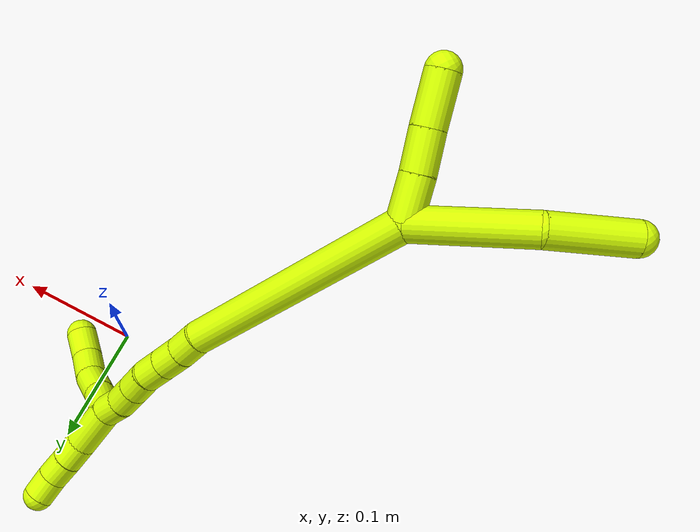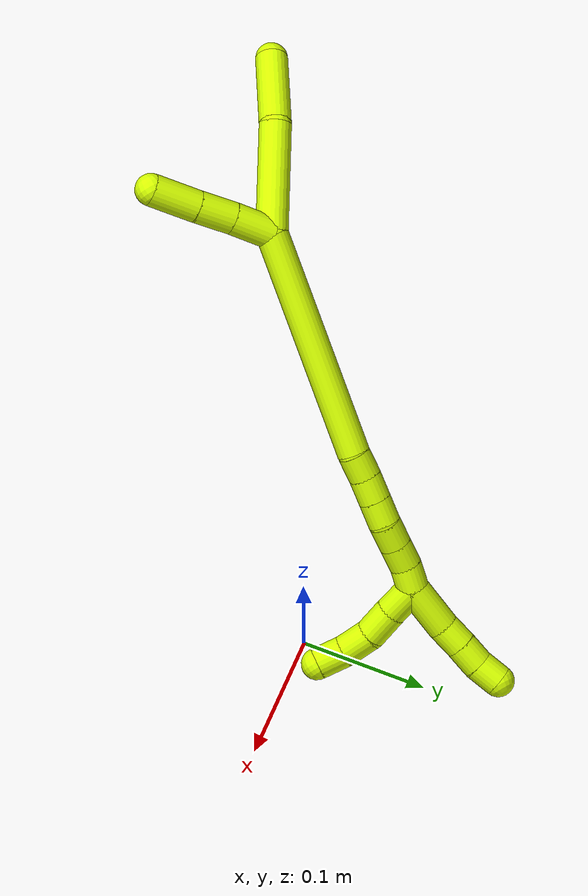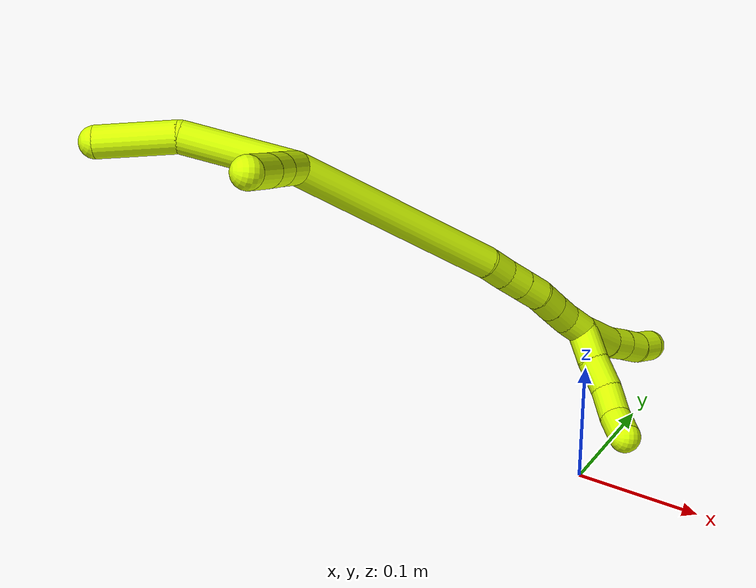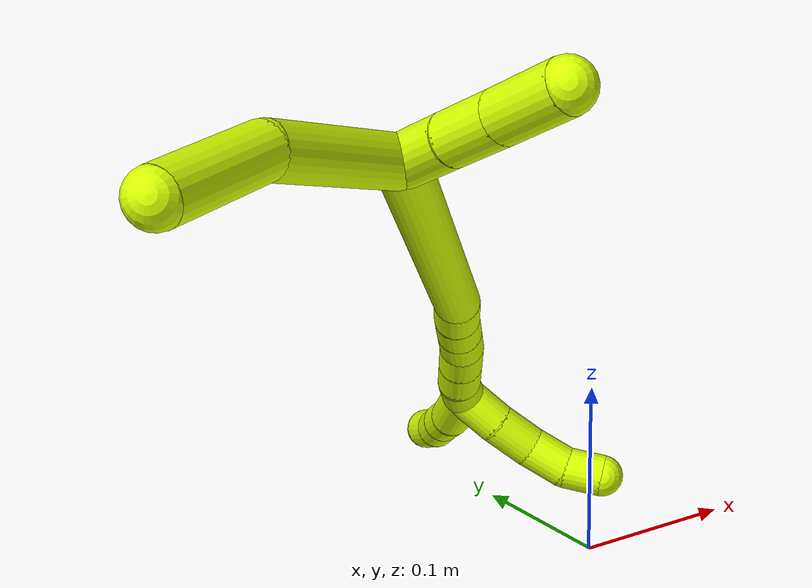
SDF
<sdf version="1.7">
 <world name="default">
  <model name="15">
   <static>0</static>
   <link name="15">
    <collision name="collision-cylinder-e_1_2_8">
     <pose>-0.007145 0.021741 0.036948 -0.531857 -0.165144 0.045077</pose>
     <geometry><cylinder><radius>0.0125</radius><length>0.086923</length></cylinder></geometry>
     <surface>
      <friction><ode><mu>1.16</mu><mu2>1.16</mu2><slip1>0</slip1><slip2>0</slip2></ode></friction>
      <contact><ode><kp>1e+06</kp><kd>1</kd><max_vel>0</max_vel><min_depth>0.001</min_depth></ode></contact>
     </surface>
    </collision>
    <visual name="visual-cylinder-e_1_2_8">
     <pose>-0.007145 0.021741 0.036948 -0.531857 -0.165144 0.045077</pose>
     <geometry><cylinder><radius>0.0125</radius><length>0.086923</length></cylinder></geometry>
     <material><ambient>0.835294 1 0 1</ambient></material>
    </visual>
    <collision name="collision-cylinder-e_2_8_6">
     <pose>-0.028822 0.055136 0.099346 -0.429427 -0.478879 0.106374</pose>
     <geometry><cylinder><radius>0.0125</radius><length>0.063077</length></cylinder></geometry>
     <surface>
      <friction><ode><mu>1.16</mu><mu2>1.16</mu2><slip1>0</slip1><slip2>0</slip2></ode></friction>
      <contact><ode><kp>1e+06</kp><kd>1</kd><max_vel>0</max_vel><min_depth>0.001</min_depth></ode></contact>
     </surface>
    </collision>
    <visual name="visual-cylinder-e_2_8_6">
     <pose>-0.028822 0.055136 0.099346 -0.429427 -0.478879 0.106374</pose>
     <geometry><cylinder><radius>0.0125</radius><length>0.063077</length></cylinder></geometry>
     <material><ambient>0.835294 1 0 1</ambient></material>
    </visual>
    <collision name="collision-cylinder-e_1_2_9">
     <pose>0.005916 -0.010135 0.01144 0.724992 0.369324 0.141446</pose>
     <geometry><cylinder><radius>0.0125</radius><length>0.032777</length></cylinder></geometry>
     <surface>
      <friction><ode><mu>1.16</mu><mu2>1.16</mu2><slip1>0</slip1><slip2>0</slip2></ode></friction>
      <contact><ode><kp>1e+06</kp><kd>1</kd><max_vel>0</max_vel><min_depth>0.001</min_depth></ode></contact>
     </surface>
    </collision>
    <visual name="visual-cylinder-e_1_2_9">
     <pose>0.005916 -0.010135 0.01144 0.724992 0.369324 0.141446</pose>
     <geometry><cylinder><radius>0.0125</radius><length>0.032777</length></cylinder></geometry>
     <material><ambient>0.835294 1 0 1</ambient></material>
    </visual>
    <collision name="collision-cylinder-e_2_9_10">
     <pose>0.01753 -0.029876 0.032553 0.781904 0.395884 0.164961</pose>
     <geometry><cylinder><radius>0.0125</radius><length>0.029551</length></cylinder></geometry>
     <surface>
      <friction><ode><mu>1.16</mu><mu2>1.16</mu2><slip1>0</slip1><slip2>0</slip2></ode></friction>
      <contact><ode><kp>1e+06</kp><kd>1</kd><max_vel>0</max_vel><min_depth>0.001</min_depth></ode></contact>
     </surface>
    </collision>
    <visual name="visual-cylinder-e_2_9_10">
     <pose>0.01753 -0.029876 0.032553 0.781904 0.395884 0.164961</pose>
     <geometry><cylinder><radius>0.0125</radius><length>0.029551</length></cylinder></geometry>
     <material><ambient>0.835294 1 0 1</ambient></material>
    </visual>
    <collision name="collision-cylinder-e_3_10_5">
     <pose>0.030349 -0.051303 0.055046 0.744927 0.387733 0.153114</pose>
     <geometry><cylinder><radius>0.0125</radius><length>0.037672</length></cylinder></geometry>
     <surface>
      <friction><ode><mu>1.16</mu><mu2>1.16</mu2><slip1>0</slip1><slip2>0</slip2></ode></friction>
      <contact><ode><kp>1e+06</kp><kd>1</kd><max_vel>0</max_vel><min_depth>0.001</min_depth></ode></contact>
     </surface>
    </collision>
    <visual name="visual-cylinder-e_3_10_5">
     <pose>0.030349 -0.051303 0.055046 0.744927 0.387733 0.153114</pose>
     <geometry><cylinder><radius>0.0125</radius><length>0.037672</length></cylinder></geometry>
     <material><ambient>0.835294 1 0 1</ambient></material>
    </visual>
    <collision name="collision-cylinder-e_1_2_11">
     <pose>-0.02524 -0.013878 -0.085036 2.97982 -0.284971 -2.11292</pose>
     <geometry><cylinder><radius>0.0125</radius><length>0.179565</length></cylinder></geometry>
     <surface>
      <friction><ode><mu>1.16</mu><mu2>1.16</mu2><slip1>0</slip1><slip2>0</slip2></ode></friction>
      <contact><ode><kp>1e+06</kp><kd>1</kd><max_vel>0</max_vel><min_depth>0.001</min_depth></ode></contact>
     </surface>
    </collision>
    <visual name="visual-cylinder-e_1_2_11">
     <pose>-0.02524 -0.013878 -0.085036 2.97982 -0.284971 -2.11292</pose>
     <geometry><cylinder><radius>0.0125</radius><length>0.179565</length></cylinder></geometry>
     <material><ambient>0.835294 1 0 1</ambient></material>
    </visual>
    <collision name="collision-cylinder-e_2_11_12">
     <pose>-0.05482 -0.02833 -0.179304 3.07951 -0.438678 -2.86479</pose>
     <geometry><cylinder><radius>0.0125</radius><length>0.020433</length></cylinder></geometry>
     <surface>
      <friction><ode><mu>1.16</mu><mu2>1.16</mu2><slip1>0</slip1><slip2>0</slip2></ode></friction>
      <contact><ode><kp>1e+06</kp><kd>1</kd><max_vel>0</max_vel><min_depth>0.001</min_depth></ode></contact>
     </surface>
    </collision>
    <visual name="visual-cylinder-e_2_11_12">
     <pose>-0.05482 -0.02833 -0.179304 3.07951 -0.438678 -2.86479</pose>
     <geometry><cylinder><radius>0.0125</radius><length>0.020433</length></cylinder></geometry>
     <material><ambient>0.835294 1 0 1</ambient></material>
    </visual>
    <collision name="collision-cylinder-e_3_12_13">
     <pose>-0.062885 -0.029997 -0.197752 3.02347 -0.381711 -2.54759</pose>
     <geometry><cylinder><radius>0.0125</radius><length>0.020001</length></cylinder></geometry>
     <surface>
      <friction><ode><mu>1.16</mu><mu2>1.16</mu2><slip1>0</slip1><slip2>0</slip2></ode></friction>
      <contact><ode><kp>1e+06</kp><kd>1</kd><max_vel>0</max_vel><min_depth>0.001</min_depth></ode></contact>
     </surface>
    </collision>
    <visual name="visual-cylinder-e_3_12_13">
     <pose>-0.062885 -0.029997 -0.197752 3.02347 -0.381711 -2.54759</pose>
     <geometry><cylinder><radius>0.0125</radius><length>0.020001</length></cylinder></geometry>
     <material><ambient>0.835294 1 0 1</ambient></material>
    </visual>
    <collision name="collision-cylinder-e_4_13_14">
     <pose>-0.070331 -0.032197 -0.216184 3.02219 -0.381266 -2.54087</pose>
     <geometry><cylinder><radius>0.0125</radius><length>0.02</length></cylinder></geometry>
     <surface>
      <friction><ode><mu>1.16</mu><mu2>1.16</mu2><slip1>0</slip1><slip2>0</slip2></ode></friction>
      <contact><ode><kp>1e+06</kp><kd>1</kd><max_vel>0</max_vel><min_depth>0.001</min_depth></ode></contact>
     </surface>
    </collision>
    <visual name="visual-cylinder-e_4_13_14">
     <pose>-0.070331 -0.032197 -0.216184 3.02219 -0.381266 -2.54087</pose>
     <geometry><cylinder><radius>0.0125</radius><length>0.02</length></cylinder></geometry>
     <material><ambient>0.835294 1 0 1</ambient></material>
    </visual>
    <collision name="collision-cylinder-e_5_14_15">
     <pose>-0.079338 -0.033756 -0.233876 3.08806 -0.556943 -2.95487</pose>
     <geometry><cylinder><radius>0.0125</radius><length>0.02</length></cylinder></geometry>
     <surface>
      <friction><ode><mu>1.16</mu><mu2>1.16</mu2><slip1>0</slip1><slip2>0</slip2></ode></friction>
      <contact><ode><kp>1e+06</kp><kd>1</kd><max_vel>0</max_vel><min_depth>0.001</min_depth></ode></contact>
     </surface>
    </collision>
    <visual name="visual-cylinder-e_5_14_15">
     <pose>-0.079338 -0.033756 -0.233876 3.08806 -0.556943 -2.95487</pose>
     <geometry><cylinder><radius>0.0125</radius><length>0.02</length></cylinder></geometry>
     <material><ambient>0.835294 1 0 1</ambient></material>
    </visual>
    <collision name="collision-cylinder-e_6_15_16">
     <pose>-0.089812 -0.034627 -0.250893 3.09284 -0.545402 -2.96767</pose>
     <geometry><cylinder><radius>0.0125</radius><length>0.02</length></cylinder></geometry>
     <surface>
      <friction><ode><mu>1.16</mu><mu2>1.16</mu2><slip1>0</slip1><slip2>0</slip2></ode></friction>
      <contact><ode><kp>1e+06</kp><kd>1</kd><max_vel>0</max_vel><min_depth>0.001</min_depth></ode></contact>
     </surface>
    </collision>
    <visual name="visual-cylinder-e_6_15_16">
     <pose>-0.089812 -0.034627 -0.250893 3.09284 -0.545402 -2.96767</pose>
     <geometry><cylinder><radius>0.0125</radius><length>0.02</length></cylinder></geometry>
     <material><ambient>0.835294 1 0 1</ambient></material>
    </visual>
    <collision name="collision-cylinder-e_7_16_1">
     <pose>-0.098957 -0.036911 -0.268424 2.9369 -0.406838 -2.21764</pose>
     <geometry><cylinder><radius>0.0125</radius><length>0.02</length></cylinder></geometry>
     <surface>
      <friction><ode><mu>1.16</mu><mu2>1.16</mu2><slip1>0</slip1><slip2>0</slip2></ode></friction>
      <contact><ode><kp>1e+06</kp><kd>1</kd><max_vel>0</max_vel><min_depth>0.001</min_depth></ode></contact>
     </surface>
    </collision>
    <visual name="visual-cylinder-e_7_16_1">
     <pose>-0.098957 -0.036911 -0.268424 2.9369 -0.406838 -2.21764</pose>
     <geometry><cylinder><radius>0.0125</radius><length>0.02</length></cylinder></geometry>
     <material><ambient>0.835294 1 0 1</ambient></material>
    </visual>
    <collision name="collision-cylinder-e_1_1_17">
     <pose>-0.108661 -0.050234 -0.280165 1.80631 -0.453833 -0.569779</pose>
     <geometry><cylinder><radius>0.0125</radius><length>0.026218</length></cylinder></geometry>
     <surface>
      <friction><ode><mu>1.16</mu><mu2>1.16</mu2><slip1>0</slip1><slip2>0</slip2></ode></friction>
      <contact><ode><kp>1e+06</kp><kd>1</kd><max_vel>0</max_vel><min_depth>0.001</min_depth></ode></contact>
     </surface>
    </collision>
    <visual name="visual-cylinder-e_1_1_17">
     <pose>-0.108661 -0.050234 -0.280165 1.80631 -0.453833 -0.569779</pose>
     <geometry><cylinder><radius>0.0125</radius><length>0.026218</length></cylinder></geometry>
     <material><ambient>0.835294 1 0 1</ambient></material>
    </visual>
    <collision name="collision-cylinder-e_2_17_18">
     <pose>-0.11914 -0.073223 -0.286319 1.85788 -0.374905 -0.497054</pose>
     <geometry><cylinder><radius>0.0125</radius><length>0.025842</length></cylinder></geometry>
     <surface>
      <friction><ode><mu>1.16</mu><mu2>1.16</mu2><slip1>0</slip1><slip2>0</slip2></ode></friction>
      <contact><ode><kp>1e+06</kp><kd>1</kd><max_vel>0</max_vel><min_depth>0.001</min_depth></ode></contact>
     </surface>
    </collision>
    <visual name="visual-cylinder-e_2_17_18">
     <pose>-0.11914 -0.073223 -0.286319 1.85788 -0.374905 -0.497054</pose>
     <geometry><cylinder><radius>0.0125</radius><length>0.025842</length></cylinder></geometry>
     <material><ambient>0.835294 1 0 1</ambient></material>
    </visual>
    <collision name="collision-cylinder-e_3_18_19">
     <pose>-0.127525 -0.096708 -0.29019 1.60985 -0.296395 -0.308019</pose>
     <geometry><cylinder><radius>0.0125</radius><length>0.025018</length></cylinder></geometry>
     <surface>
      <friction><ode><mu>1.16</mu><mu2>1.16</mu2><slip1>0</slip1><slip2>0</slip2></ode></friction>
      <contact><ode><kp>1e+06</kp><kd>1</kd><max_vel>0</max_vel><min_depth>0.001</min_depth></ode></contact>
     </surface>
    </collision>
    <visual name="visual-cylinder-e_3_18_19">
     <pose>-0.127525 -0.096708 -0.29019 1.60985 -0.296395 -0.308019</pose>
     <geometry><cylinder><radius>0.0125</radius><length>0.025018</length></cylinder></geometry>
     <material><ambient>0.835294 1 0 1</ambient></material>
    </visual>
    <collision name="collision-cylinder-e_4_19_4">
     <pose>-0.130881 -0.120084 -0.28975 1.49151 0.025968 0.023987</pose>
     <geometry><cylinder><radius>0.0125</radius><length>0.022922</length></cylinder></geometry>
     <surface>
      <friction><ode><mu>1.16</mu><mu2>1.16</mu2><slip1>0</slip1><slip2>0</slip2></ode></friction>
      <contact><ode><kp>1e+06</kp><kd>1</kd><max_vel>0</max_vel><min_depth>0.001</min_depth></ode></contact>
     </surface>
    </collision>
    <visual name="visual-cylinder-e_4_19_4">
     <pose>-0.130881 -0.120084 -0.28975 1.49151 0.025968 0.023987</pose>
     <geometry><cylinder><radius>0.0125</radius><length>0.022922</length></cylinder></geometry>
     <material><ambient>0.835294 1 0 1</ambient></material>
    </visual>
    <collision name="collision-cylinder-e_1_1_20">
     <pose>-0.110861 -0.035869 -0.294921 -2.97696 -0.421058 2.40468</pose>
     <geometry><cylinder><radius>0.0125</radius><length>0.038886</length></cylinder></geometry>
     <surface>
      <friction><ode><mu>1.16</mu><mu2>1.16</mu2><slip1>0</slip1><slip2>0</slip2></ode></friction>
      <contact><ode><kp>1e+06</kp><kd>1</kd><max_vel>0</max_vel><min_depth>0.001</min_depth></ode></contact>
     </surface>
    </collision>
    <visual name="visual-cylinder-e_1_1_20">
     <pose>-0.110861 -0.035869 -0.294921 -2.97696 -0.421058 2.40468</pose>
     <geometry><cylinder><radius>0.0125</radius><length>0.038886</length></cylinder></geometry>
     <material><ambient>0.835294 1 0 1</ambient></material>
    </visual>
    <collision name="collision-cylinder-e_2_20_21">
     <pose>-0.121654 -0.030498 -0.321893 -2.88707 -0.283149 1.67847</pose>
     <geometry><cylinder><radius>0.0125</radius><length>0.020376</length></cylinder></geometry>
     <surface>
      <friction><ode><mu>1.16</mu><mu2>1.16</mu2><slip1>0</slip1><slip2>0</slip2></ode></friction>
      <contact><ode><kp>1e+06</kp><kd>1</kd><max_vel>0</max_vel><min_depth>0.001</min_depth></ode></contact>
     </surface>
    </collision>
    <visual name="visual-cylinder-e_2_20_21">
     <pose>-0.121654 -0.030498 -0.321893 -2.88707 -0.283149 1.67847</pose>
     <geometry><cylinder><radius>0.0125</radius><length>0.020376</length></cylinder></geometry>
     <material><ambient>0.835294 1 0 1</ambient></material>
    </visual>
    <collision name="collision-cylinder-e_3_21_22">
     <pose>-0.127475 -0.025981 -0.341006 -2.93176 -0.292916 1.90166</pose>
     <geometry><cylinder><radius>0.0125</radius><length>0.020601</length></cylinder></geometry>
     <surface>
      <friction><ode><mu>1.16</mu><mu2>1.16</mu2><slip1>0</slip1><slip2>0</slip2></ode></friction>
      <contact><ode><kp>1e+06</kp><kd>1</kd><max_vel>0</max_vel><min_depth>0.001</min_depth></ode></contact>
     </surface>
    </collision>
    <visual name="visual-cylinder-e_3_21_22">
     <pose>-0.127475 -0.025981 -0.341006 -2.93176 -0.292916 1.90166</pose>
     <geometry><cylinder><radius>0.0125</radius><length>0.020601</length></cylinder></geometry>
     <material><ambient>0.835294 1 0 1</ambient></material>
    </visual>
    <collision name="collision-cylinder-e_4_22_3">
     <pose>-0.132133 -0.020174 -0.359841 -2.75394 -0.168037 0.810571</pose>
     <geometry><cylinder><radius>0.0125</radius><length>0.020136</length></cylinder></geometry>
     <surface>
      <friction><ode><mu>1.16</mu><mu2>1.16</mu2><slip1>0</slip1><slip2>0</slip2></ode></friction>
      <contact><ode><kp>1e+06</kp><kd>1</kd><max_vel>0</max_vel><min_depth>0.001</min_depth></ode></contact>
     </surface>
    </collision>
    <visual name="visual-cylinder-e_4_22_3">
     <pose>-0.132133 -0.020174 -0.359841 -2.75394 -0.168037 0.810571</pose>
     <geometry><cylinder><radius>0.0125</radius><length>0.020136</length></cylinder></geometry>
     <material><ambient>0.835294 1 0 1</ambient></material>
    </visual>
    <collision name="collision-sphere-3">
     <pose>-0.133817 -0.016422 -0.369031 0 -0 0</pose>
     <geometry><sphere><radius>0.0125</radius></sphere></geometry>
     <surface>
      <friction><ode><mu>1.16</mu><mu2>1.16</mu2><slip1>0</slip1><slip2>0</slip2></ode></friction>
      <contact><ode><kp>1e+06</kp><kd>1</kd><max_vel>0</max_vel><min_depth>0.001</min_depth></ode></contact>
     </surface>
    </collision>
    <visual name="visual-sphere-3">
     <pose>-0.133817 -0.016422 -0.369031 0 -0 0</pose>
     <geometry><sphere><radius>0.0125</radius></sphere></geometry>
     <material><ambient>0.835294 1 0 1</ambient></material>
    </visual>
    <collision name="collision-sphere-22">
     <pose>-0.130449 -0.023926 -0.350652 0 -0 0</pose>
     <geometry><sphere><radius>0.0125</radius></sphere></geometry>
     <surface>
      <friction><ode><mu>1.16</mu><mu2>1.16</mu2><slip1>0</slip1><slip2>0</slip2></ode></friction>
      <contact><ode><kp>1e+06</kp><kd>1</kd><max_vel>0</max_vel><min_depth>0.001</min_depth></ode></contact>
     </surface>
    </collision>
    <visual name="visual-sphere-22">
     <pose>-0.130449 -0.023926 -0.350652 0 -0 0</pose>
     <geometry><sphere><radius>0.0125</radius></sphere></geometry>
     <material><ambient>0.835294 1 0 1</ambient></material>
    </visual>
    <collision name="collision-sphere-21">
     <pose>-0.124501 -0.028035 -0.33136 0 -0 0</pose>
     <geometry><sphere><radius>0.0125</radius></sphere></geometry>
     <surface>
      <friction><ode><mu>1.16</mu><mu2>1.16</mu2><slip1>0</slip1><slip2>0</slip2></ode></friction>
      <contact><ode><kp>1e+06</kp><kd>1</kd><max_vel>0</max_vel><min_depth>0.001</min_depth></ode></contact>
     </surface>
    </collision>
    <visual name="visual-sphere-21">
     <pose>-0.124501 -0.028035 -0.33136 0 -0 0</pose>
     <geometry><sphere><radius>0.0125</radius></sphere></geometry>
     <material><ambient>0.835294 1 0 1</ambient></material>
    </visual>
    <collision name="collision-sphere-20">
     <pose>-0.118808 -0.032961 -0.312426 0 -0 0</pose>
     <geometry><sphere><radius>0.0125</radius></sphere></geometry>
     <surface>
      <friction><ode><mu>1.16</mu><mu2>1.16</mu2><slip1>0</slip1><slip2>0</slip2></ode></friction>
      <contact><ode><kp>1e+06</kp><kd>1</kd><max_vel>0</max_vel><min_depth>0.001</min_depth></ode></contact>
     </surface>
    </collision>
    <visual name="visual-sphere-20">
     <pose>-0.118808 -0.032961 -0.312426 0 -0 0</pose>
     <geometry><sphere><radius>0.0125</radius></sphere></geometry>
     <material><ambient>0.835294 1 0 1</ambient></material>
    </visual>
    <collision name="collision-sphere-4">
     <pose>-0.130583 -0.131505 -0.288843 0 -0 0</pose>
     <geometry><sphere><radius>0.0125</radius></sphere></geometry>
     <surface>
      <friction><ode><mu>1.16</mu><mu2>1.16</mu2><slip1>0</slip1><slip2>0</slip2></ode></friction>
      <contact><ode><kp>1e+06</kp><kd>1</kd><max_vel>0</max_vel><min_depth>0.001</min_depth></ode></contact>
     </surface>
    </collision>
    <visual name="visual-sphere-4">
     <pose>-0.130583 -0.131505 -0.288843 0 -0 0</pose>
     <geometry><sphere><radius>0.0125</radius></sphere></geometry>
     <material><ambient>0.835294 1 0 1</ambient></material>
    </visual>
    <collision name="collision-sphere-5">
     <pose>0.037471 -0.063125 0.067865 0 -0 0</pose>
     <geometry><sphere><radius>0.0125</radius></sphere></geometry>
     <surface>
      <friction><ode><mu>1.16</mu><mu2>1.16</mu2><slip1>0</slip1><slip2>0</slip2></ode></friction>
      <contact><ode><kp>1e+06</kp><kd>1</kd><max_vel>0</max_vel><min_depth>0.001</min_depth></ode></contact>
     </surface>
    </collision>
    <visual name="visual-sphere-5">
     <pose>0.037471 -0.063125 0.067865 0 -0 0</pose>
     <geometry><sphere><radius>0.0125</radius></sphere></geometry>
     <material><ambient>0.835294 1 0 1</ambient></material>
    </visual>
    <collision name="collision-sphere-10">
     <pose>0.023228 -0.039482 0.042226 0 -0 0</pose>
     <geometry><sphere><radius>0.0125</radius></sphere></geometry>
     <surface>
      <friction><ode><mu>1.16</mu><mu2>1.16</mu2><slip1>0</slip1><slip2>0</slip2></ode></friction>
      <contact><ode><kp>1e+06</kp><kd>1</kd><max_vel>0</max_vel><min_depth>0.001</min_depth></ode></contact>
     </surface>
    </collision>
    <visual name="visual-sphere-10">
     <pose>0.023228 -0.039482 0.042226 0 -0 0</pose>
     <geometry><sphere><radius>0.0125</radius></sphere></geometry>
     <material><ambient>0.835294 1 0 1</ambient></material>
    </visual>
    <collision name="collision-sphere-6">
     <pose>-0.043355 0.06679 0.124795 0 -0 0</pose>
     <geometry><sphere><radius>0.0125</radius></sphere></geometry>
     <surface>
      <friction><ode><mu>1.16</mu><mu2>1.16</mu2><slip1>0</slip1><slip2>0</slip2></ode></friction>
      <contact><ode><kp>1e+06</kp><kd>1</kd><max_vel>0</max_vel><min_depth>0.001</min_depth></ode></contact>
     </surface>
    </collision>
    <visual name="visual-sphere-6">
     <pose>-0.043355 0.06679 0.124795 0 -0 0</pose>
     <geometry><sphere><radius>0.0125</radius></sphere></geometry>
     <material><ambient>0.835294 1 0 1</ambient></material>
    </visual>
    <collision name="collision-sphere-9">
     <pose>0.011832 -0.02027 0.022879 0 -0 0</pose>
     <geometry><sphere><radius>0.0125</radius></sphere></geometry>
     <surface>
      <friction><ode><mu>1.16</mu><mu2>1.16</mu2><slip1>0</slip1><slip2>0</slip2></ode></friction>
      <contact><ode><kp>1e+06</kp><kd>1</kd><max_vel>0</max_vel><min_depth>0.001</min_depth></ode></contact>
     </surface>
    </collision>
    <visual name="visual-sphere-9">
     <pose>0.011832 -0.02027 0.022879 0 -0 0</pose>
     <geometry><sphere><radius>0.0125</radius></sphere></geometry>
     <material><ambient>0.835294 1 0 1</ambient></material>
    </visual>
    <collision name="collision-sphere-2">
     <geometry><sphere><radius>0.0125</radius></sphere></geometry>
     <surface>
      <friction><ode><mu>1.16</mu><mu2>1.16</mu2><slip1>0</slip1><slip2>0</slip2></ode></friction>
      <contact><ode><kp>1e+06</kp><kd>1</kd><max_vel>0</max_vel><min_depth>0.001</min_depth></ode></contact>
     </surface>
    </collision>
    <visual name="visual-sphere-2">
     <geometry><sphere><radius>0.0125</radius></sphere></geometry>
     <material><ambient>0.835294 1 0 1</ambient></material>
    </visual>
    <collision name="collision-sphere-19">
     <pose>-0.131179 -0.108663 -0.290658 0 -0 0</pose>
     <geometry><sphere><radius>0.0125</radius></sphere></geometry>
     <surface>
      <friction><ode><mu>1.16</mu><mu2>1.16</mu2><slip1>0</slip1><slip2>0</slip2></ode></friction>
      <contact><ode><kp>1e+06</kp><kd>1</kd><max_vel>0</max_vel><min_depth>0.001</min_depth></ode></contact>
     </surface>
    </collision>
    <visual name="visual-sphere-19">
     <pose>-0.131179 -0.108663 -0.290658 0 -0 0</pose>
     <geometry><sphere><radius>0.0125</radius></sphere></geometry>
     <material><ambient>0.835294 1 0 1</ambient></material>
    </visual>
    <collision name="collision-sphere-8">
     <pose>-0.01429 0.043482 0.073897 0 -0 0</pose>
     <geometry><sphere><radius>0.0125</radius></sphere></geometry>
     <surface>
      <friction><ode><mu>1.16</mu><mu2>1.16</mu2><slip1>0</slip1><slip2>0</slip2></ode></friction>
      <contact><ode><kp>1e+06</kp><kd>1</kd><max_vel>0</max_vel><min_depth>0.001</min_depth></ode></contact>
     </surface>
    </collision>
    <visual name="visual-sphere-8">
     <pose>-0.01429 0.043482 0.073897 0 -0 0</pose>
     <geometry><sphere><radius>0.0125</radius></sphere></geometry>
     <material><ambient>0.835294 1 0 1</ambient></material>
    </visual>
    <collision name="collision-sphere-11">
     <pose>-0.050481 -0.027756 -0.170073 0 -0 0</pose>
     <geometry><sphere><radius>0.0125</radius></sphere></geometry>
     <surface>
      <friction><ode><mu>1.16</mu><mu2>1.16</mu2><slip1>0</slip1><slip2>0</slip2></ode></friction>
      <contact><ode><kp>1e+06</kp><kd>1</kd><max_vel>0</max_vel><min_depth>0.001</min_depth></ode></contact>
     </surface>
    </collision>
    <visual name="visual-sphere-11">
     <pose>-0.050481 -0.027756 -0.170073 0 -0 0</pose>
     <geometry><sphere><radius>0.0125</radius></sphere></geometry>
     <material><ambient>0.835294 1 0 1</ambient></material>
    </visual>
    <collision name="collision-sphere-12">
     <pose>-0.05916 -0.028903 -0.188536 0 -0 0</pose>
     <geometry><sphere><radius>0.0125</radius></sphere></geometry>
     <surface>
      <friction><ode><mu>1.16</mu><mu2>1.16</mu2><slip1>0</slip1><slip2>0</slip2></ode></friction>
      <contact><ode><kp>1e+06</kp><kd>1</kd><max_vel>0</max_vel><min_depth>0.001</min_depth></ode></contact>
     </surface>
    </collision>
    <visual name="visual-sphere-12">
     <pose>-0.05916 -0.028903 -0.188536 0 -0 0</pose>
     <geometry><sphere><radius>0.0125</radius></sphere></geometry>
     <material><ambient>0.835294 1 0 1</ambient></material>
    </visual>
    <collision name="collision-sphere-13">
     <pose>-0.06661 -0.031091 -0.206968 0 -0 0</pose>
     <geometry><sphere><radius>0.0125</radius></sphere></geometry>
     <surface>
      <friction><ode><mu>1.16</mu><mu2>1.16</mu2><slip1>0</slip1><slip2>0</slip2></ode></friction>
      <contact><ode><kp>1e+06</kp><kd>1</kd><max_vel>0</max_vel><min_depth>0.001</min_depth></ode></contact>
     </surface>
    </collision>
    <visual name="visual-sphere-13">
     <pose>-0.06661 -0.031091 -0.206968 0 -0 0</pose>
     <geometry><sphere><radius>0.0125</radius></sphere></geometry>
     <material><ambient>0.835294 1 0 1</ambient></material>
    </visual>
    <collision name="collision-sphere-14">
     <pose>-0.074052 -0.033302 -0.2254 0 -0 0</pose>
     <geometry><sphere><radius>0.0125</radius></sphere></geometry>
     <surface>
      <friction><ode><mu>1.16</mu><mu2>1.16</mu2><slip1>0</slip1><slip2>0</slip2></ode></friction>
      <contact><ode><kp>1e+06</kp><kd>1</kd><max_vel>0</max_vel><min_depth>0.001</min_depth></ode></contact>
     </surface>
    </collision>
    <visual name="visual-sphere-14">
     <pose>-0.074052 -0.033302 -0.2254 0 -0 0</pose>
     <geometry><sphere><radius>0.0125</radius></sphere></geometry>
     <material><ambient>0.835294 1 0 1</ambient></material>
    </visual>
    <collision name="collision-sphere-15">
     <pose>-0.084624 -0.034211 -0.242353 0 -0 0</pose>
     <geometry><sphere><radius>0.0125</radius></sphere></geometry>
     <surface>
      <friction><ode><mu>1.16</mu><mu2>1.16</mu2><slip1>0</slip1><slip2>0</slip2></ode></friction>
      <contact><ode><kp>1e+06</kp><kd>1</kd><max_vel>0</max_vel><min_depth>0.001</min_depth></ode></contact>
     </surface>
    </collision>
    <visual name="visual-sphere-15">
     <pose>-0.084624 -0.034211 -0.242353 0 -0 0</pose>
     <geometry><sphere><radius>0.0125</radius></sphere></geometry>
     <material><ambient>0.835294 1 0 1</ambient></material>
    </visual>
    <collision name="collision-sphere-16">
     <pose>-0.095 -0.035044 -0.259432 0 -0 0</pose>
     <geometry><sphere><radius>0.0125</radius></sphere></geometry>
     <surface>
      <friction><ode><mu>1.16</mu><mu2>1.16</mu2><slip1>0</slip1><slip2>0</slip2></ode></friction>
      <contact><ode><kp>1e+06</kp><kd>1</kd><max_vel>0</max_vel><min_depth>0.001</min_depth></ode></contact>
     </surface>
    </collision>
    <visual name="visual-sphere-16">
     <pose>-0.095 -0.035044 -0.259432 0 -0 0</pose>
     <geometry><sphere><radius>0.0125</radius></sphere></geometry>
     <material><ambient>0.835294 1 0 1</ambient></material>
    </visual>
    <collision name="collision-sphere-1">
     <pose>-0.102914 -0.038777 -0.277416 0 -0 0</pose>
     <geometry><sphere><radius>0.0125</radius></sphere></geometry>
     <surface>
      <friction><ode><mu>1.16</mu><mu2>1.16</mu2><slip1>0</slip1><slip2>0</slip2></ode></friction>
      <contact><ode><kp>1e+06</kp><kd>1</kd><max_vel>0</max_vel><min_depth>0.001</min_depth></ode></contact>
     </surface>
    </collision>
    <visual name="visual-sphere-1">
     <pose>-0.102914 -0.038777 -0.277416 0 -0 0</pose>
     <geometry><sphere><radius>0.0125</radius></sphere></geometry>
     <material><ambient>0.835294 1 0 1</ambient></material>
    </visual>
    <collision name="collision-sphere-18">
     <pose>-0.123871 -0.084754 -0.289723 0 -0 0</pose>
     <geometry><sphere><radius>0.0125</radius></sphere></geometry>
     <surface>
      <friction><ode><mu>1.16</mu><mu2>1.16</mu2><slip1>0</slip1><slip2>0</slip2></ode></friction>
      <contact><ode><kp>1e+06</kp><kd>1</kd><max_vel>0</max_vel><min_depth>0.001</min_depth></ode></contact>
     </surface>
    </collision>
    <visual name="visual-sphere-18">
     <pose>-0.123871 -0.084754 -0.289723 0 -0 0</pose>
     <geometry><sphere><radius>0.0125</radius></sphere></geometry>
     <material><ambient>0.835294 1 0 1</ambient></material>
    </visual>
    <collision name="collision-sphere-17">
     <pose>-0.114408 -0.061691 -0.282914 0 -0 0</pose>
     <geometry><sphere><radius>0.0125</radius></sphere></geometry>
     <surface>
      <friction><ode><mu>1.16</mu><mu2>1.16</mu2><slip1>0</slip1><slip2>0</slip2></ode></friction>
      <contact><ode><kp>1e+06</kp><kd>1</kd><max_vel>0</max_vel><min_depth>0.001</min_depth></ode></contact>
     </surface>
    </collision>
    <visual name="visual-sphere-17">
     <pose>-0.114408 -0.061691 -0.282914 0 -0 0</pose>
     <geometry><sphere><radius>0.0125</radius></sphere></geometry>
     <material><ambient>0.835294 1 0 1</ambient></material>
    </visual>
    <inertial>
     <pose>-0.051277 -0.02072 -0.120443 0 -0 0</pose>
     <mass>0.75</mass>
     <inertia>
      <ixx>-0.000562</ixx>
      <ixy>0</ixy>
      <ixz>0</ixz>
      <iyy>-3.9e-05</iyy>
      <iyz>0</iyz>
      <izz>0.000202</izz>
     </inertia>
    </inertial>
   </link>
   <pose>-0.189504 -0.104133 0.267127 0.646486 -1.19754 0.248958</pose>
  </model>
 </world>
</sdf>
